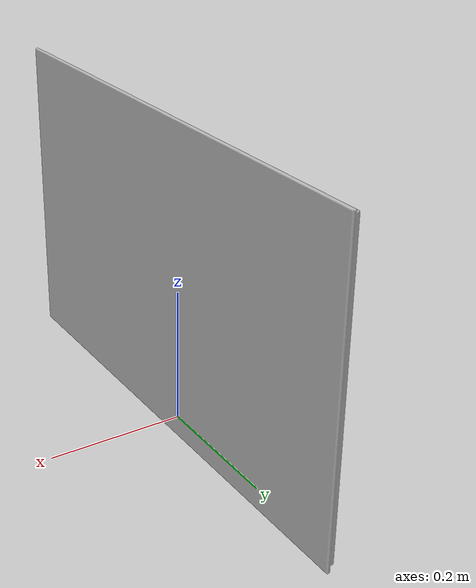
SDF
<?xml version='1.0'?>
<sdf version='1.4'>
  <model name='111'>
    <pose>0 0 0 0 0 0</pose>
    <static>true</static>
    <link name='link'>
      <collision name='collision'>
        <pose>0 0 0 0 0 0</pose>
        <geometry>
          <box>
            <size>0.0470268 0.76016 2</size>
          </box>
        </geometry>
      </collision>
      <visual name='visual'>
        <pose>0 0 0 0 0 0</pose>
        <geometry>
          <mesh><uri>model://111/111.dae</uri></mesh>
        </geometry>
      </visual>
    </link>
  </model>
</sdf>
